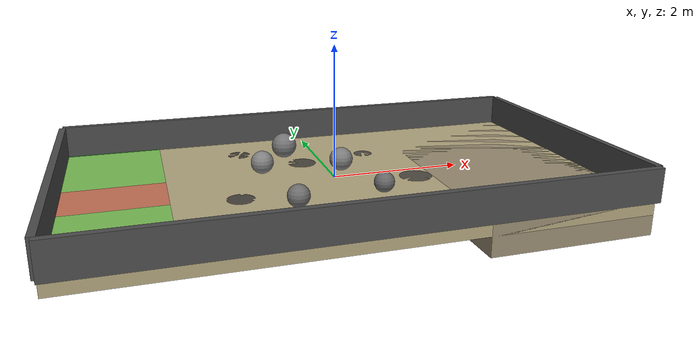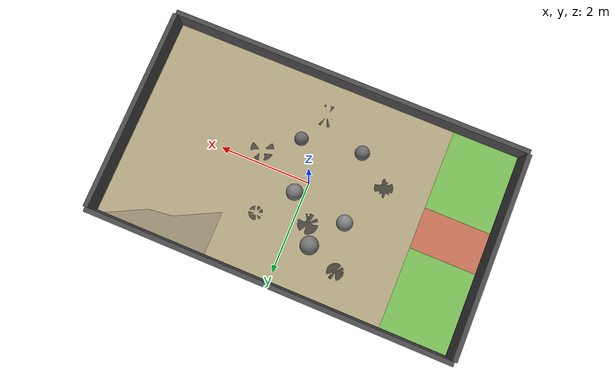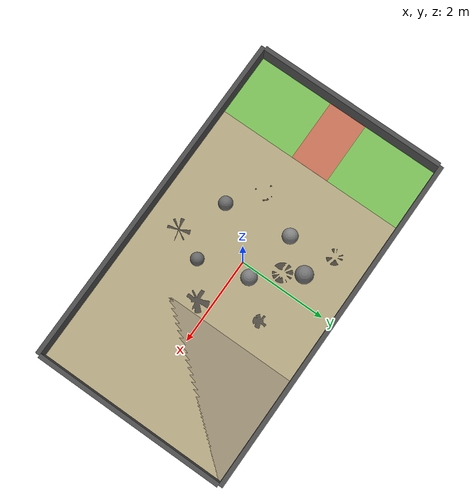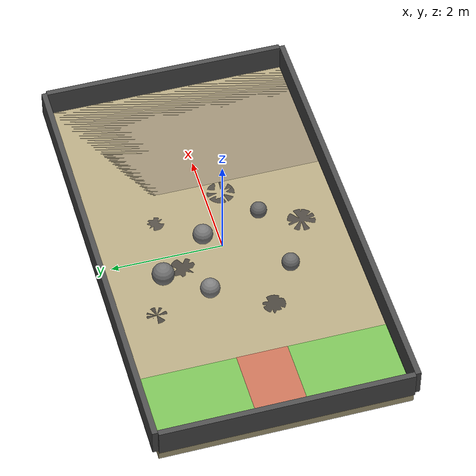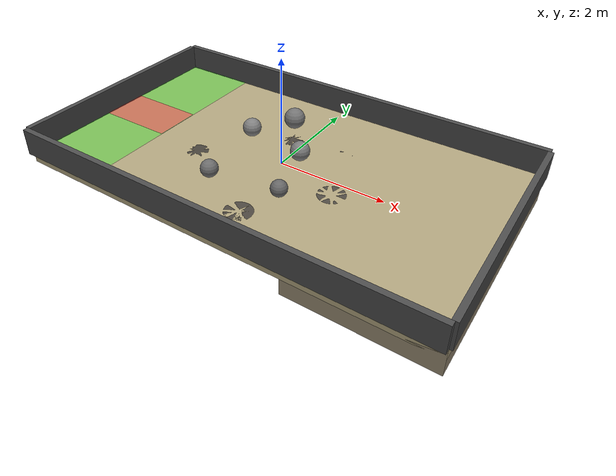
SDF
<?xml version="1.0"?>
<sdf version="1.6">
  <world name="lunabotics_uk_arena">

    <!-- Physics settings for lunar-like simulation -->
    <physics type="ode">
      <max_step_size>0.001</max_step_size>
      <real_time_factor>1</real_time_factor>
      <real_time_update_rate>1000</real_time_update_rate>
      <gravity>0 0 -9.81</gravity> <!-- Earth gravity, change to -1.62 for lunar -->
    </physics>

    <!-- Lighting -->
    <light type="directional" name="sun">
      <cast_shadows>true</cast_shadows>
      <pose>0 0 10 0 0 0</pose>
      <diffuse>0.8 0.8 0.8 1</diffuse>
      <specular>0.2 0.2 0.2 1</specular>
      <attenuation>
        <range>1000</range>
        <constant>0.9</constant>
        <linear>0.01</linear>
        <quadratic>0.001</quadratic>
      </attenuation>
      <direction>-0.5 0.1 -0.9</direction>
    </light>

    <!-- Arena Floor (sand surface) -->
    <model name="arena_floor">
      <static>true</static>
      <link name="floor_link">
        <collision name="floor_collision">
          <geometry>
            <box>
              <size>7.9 4.4 0.215</size> <!-- 21.5cm depth -->
            </box>
          </geometry>
          <surface>
            <friction>
              <ode>
                <mu>0.8</mu>
                <mu2>0.8</mu2>
              </ode>
            </friction>
          </surface>
        </collision>
        <visual name="floor_visual">
          <geometry>
            <box>
              <size>7.9 4.4 0.215</size>
            </box>
          </geometry>
          <material>
            <ambient>0.7 0.65 0.5 1</ambient>
            <diffuse>0.7 0.65 0.5 1</diffuse>
          </material>
        </visual>
        <pose>0 0 -0.1075 0 0 0</pose>
      </link>
    </model>

    <!-- Arena Walls -->
    <!-- North Wall -->
    <model name="wall_north">
      <static>true</static>
      <link name="link">
        <collision name="collision">
          <geometry>
            <box>
              <size>7.9 0.1 0.5</size>
            </box>
          </geometry>
        </collision>
        <visual name="visual">
          <geometry>
            <box>
              <size>7.9 0.1 0.5</size>
            </box>
          </geometry>
          <material>
            <ambient>0.3 0.3 0.3 1</ambient>
            <diffuse>0.3 0.3 0.3 1</diffuse>
          </material>
        </visual>
        <pose>0 2.25 0.25 0 0 0</pose>
      </link>
    </model>

    <!-- South Wall -->
    <model name="wall_south">
      <static>true</static>
      <link name="link">
        <collision name="collision">
          <geometry>
            <box>
              <size>7.9 0.1 0.5</size>
            </box>
          </geometry>
        </collision>
        <visual name="visual">
          <geometry>
            <box>
              <size>7.9 0.1 0.5</size>
            </box>
          </geometry>
          <material>
            <ambient>0.3 0.3 0.3 1</ambient>
            <diffuse>0.3 0.3 0.3 1</diffuse>
          </material>
        </visual>
        <pose>0 -2.25 0.25 0 0 0</pose>
      </link>
    </model>

    <!-- East Wall -->
    <model name="wall_east">
      <static>true</static>
      <link name="link">
        <collision name="collision">
          <geometry>
            <box>
              <size>0.1 4.4 0.5</size>
            </box>
          </geometry>
        </collision>
        <visual name="visual">
          <geometry>
            <box>
              <size>0.1 4.4 0.5</size>
            </box>
          </geometry>
          <material>
            <ambient>0.3 0.3 0.3 1</ambient>
            <diffuse>0.3 0.3 0.3 1</diffuse>
          </material>
        </visual>
        <pose>3.95 0 0.25 0 0 0</pose>
      </link>
    </model>

    <!-- West Wall -->
    <model name="wall_west">
      <static>true</static>
      <link name="link">
        <collision name="collision">
          <geometry>
            <box>
              <size>0.1 4.4 0.5</size>
            </box>
          </geometry>
        </collision>
        <visual name="visual">
          <geometry>
            <box>
              <size>0.1 4.4 0.5</size>
            </box>
          </geometry>
          <material>
            <ambient>0.3 0.3 0.3 1</ambient>
            <diffuse>0.3 0.3 0.3 1</diffuse>
          </material>
        </visual>
        <pose>-3.95 0 0.25 0 0 0</pose>
      </link>
    </model>

    <!-- Excavation Zone (deeper sand area) -->
    <model name="excavation_zone">
      <static>true</static>
      <link name="link">
        <collision name="collision">
          <geometry>
            <box>
              <size>2.5 4.4 0.515</size> <!-- 51.5cm depth -->
            </box>
          </geometry>
          <surface>
            <friction>
              <ode>
                <mu>0.8</mu>
                <mu2>0.8</mu2>
              </ode>
            </friction>
          </surface>
        </collision>
        <visual name="visual">
          <geometry>
            <box>
              <size>2.5 4.4 0.515</size>
            </box>
          </geometry>
          <material>
            <ambient>0.6 0.55 0.45 1</ambient>
            <diffuse>0.6 0.55 0.45 1</diffuse>
          </material>
        </visual>
        <pose>2.7 0 -0.2575 0 0 0</pose>
      </link>
    </model>

    <!-- Boulder Obstacles (example positions - randomize as needed) -->
    <model name="boulder_1">
      <static>true</static>
      <link name="link">
        <collision name="collision">
          <geometry>
            <sphere>
              <radius>0.175</radius> <!-- ~35cm diameter -->
            </sphere>
          </geometry>
        </collision>
        <visual name="visual">
          <geometry>
            <sphere>
              <radius>0.175</radius>
            </sphere>
          </geometry>
          <material>
            <ambient>0.5 0.5 0.5 1</ambient>
            <diffuse>0.5 0.5 0.5 1</diffuse>
          </material>
        </visual>
        <pose>-1.0 0.5 0.175 0 0 0</pose>
      </link>
    </model>

    <model name="boulder_2">
      <static>true</static>
      <link name="link">
        <collision name="collision">
          <geometry>
            <sphere>
              <radius>0.15</radius> <!-- ~30cm diameter -->
            </sphere>
          </geometry>
        </collision>
        <visual name="visual">
          <geometry>
            <sphere>
              <radius>0.15</radius>
            </sphere>
          </geometry>
          <material>
            <ambient>0.4 0.4 0.4 1</ambient>
            <diffuse>0.4 0.4 0.4 1</diffuse>
          </material>
        </visual>
        <pose>0.5 -0.8 0.15 0 0 0</pose>
      </link>
    </model>

    <model name="boulder_3">
      <static>true</static>
      <link name="link">
        <collision name="collision">
          <geometry>
            <sphere>
              <radius>0.20</radius> <!-- ~40cm diameter -->
            </sphere>
          </geometry>
        </collision>
        <visual name="visual">
          <geometry>
            <sphere>
              <radius>0.20</radius>
            </sphere>
          </geometry>
          <material>
            <ambient>0.45 0.45 0.45 1</ambient>
            <diffuse>0.45 0.45 0.45 1</diffuse>
          </material>
        </visual>
        <pose>-0.5 1.2 0.20 0 0 0</pose>
      </link>
    </model>

    <model name="boulder_4">
      <static>true</static>
      <link name="link">
        <collision name="collision">
          <geometry>
            <sphere>
              <radius>0.18</radius> <!-- ~36cm diameter -->
            </sphere>
          </geometry>
        </collision>
        <visual name="visual">
          <geometry>
            <sphere>
              <radius>0.18</radius>
            </sphere>
          </geometry>
          <material>
            <ambient>0.48 0.48 0.48 1</ambient>
            <diffuse>0.48 0.48 0.48 1</diffuse>
          </material>
        </visual>
        <pose>0.2 0.3 0.18 0 0 0</pose>
      </link>
    </model>

    <model name="boulder_5">
      <static>true</static>
      <link name="link">
        <collision name="collision">
          <geometry>
            <sphere>
              <radius>0.16</radius> <!-- ~32cm diameter -->
            </sphere>
          </geometry>
        </collision>
        <visual name="visual">
          <geometry>
            <sphere>
              <radius>0.16</radius>
            </sphere>
          </geometry>
          <material>
            <ambient>0.42 0.42 0.42 1</ambient>
            <diffuse>0.42 0.42 0.42 1</diffuse>
          </material>
        </visual>
        <pose>-0.8 -1.0 0.16 0 0 0</pose>
      </link>
    </model>

    <!-- Crater Obstacles (depressions in the sand) -->
    <!-- Crater 1 - Medium size -->
    <model name="crater_1">
      <static>true</static>
      <link name="link">
        <collision name="collision">
          <geometry>
            <cylinder>
              <radius>0.25</radius> <!-- 50cm diameter -->
              <length>0.20</length> <!-- 20cm depth -->
            </cylinder>
          </geometry>
        </collision>
        <visual name="visual">
          <geometry>
            <cylinder>
              <radius>0.25</radius>
              <length>0.20</length>
            </cylinder>
          </geometry>
          <material>
            <ambient>0.3 0.28 0.25 1</ambient>
            <diffuse>0.3 0.28 0.25 1</diffuse>
          </material>
        </visual>
        <pose>0.2 -1.5 -0.10 0 0 0</pose>
      </link>
    </model>

    <!-- Crater 2 - Large size -->
    <model name="crater_2">
      <static>true</static>
      <link name="link">
        <collision name="collision">
          <geometry>
            <cylinder>
              <radius>0.20</radius> <!-- 40cm diameter -->
              <length>0.25</length> <!-- 25cm depth -->
            </cylinder>
          </geometry>
        </collision>
        <visual name="visual">
          <geometry>
            <cylinder>
              <radius>0.20</radius>
              <length>0.25</length>
            </cylinder>
          </geometry>
          <material>
            <ambient>0.28 0.26 0.23 1</ambient>
            <diffuse>0.28 0.26 0.23 1</diffuse>
          </material>
        </visual>
        <pose>-1.5 -0.5 -0.125 0 0 0</pose>
      </link>
    </model>

    <!-- Crater 3 - Small size -->
    <model name="crater_3">
      <static>true</static>
      <link name="link">
        <collision name="collision">
          <geometry>
            <cylinder>
              <radius>0.15</radius> <!-- 30cm diameter -->
              <length>0.15</length> <!-- 15cm depth -->
            </cylinder>
          </geometry>
        </collision>
        <visual name="visual">
          <geometry>
            <cylinder>
              <radius>0.15</radius>
              <length>0.15</length>
            </cylinder>
          </geometry>
          <material>
            <ambient>0.32 0.30 0.27 1</ambient>
            <diffuse>0.32 0.30 0.27 1</diffuse>
          </material>
        </visual>
        <pose>0.8 1.0 -0.075 0 0 0</pose>
      </link>
    </model>

    <!-- Crater 4 - Medium-Large size -->
    <model name="crater_4">
      <static>true</static>
      <link name="link">
        <collision name="collision">
          <geometry>
            <cylinder>
              <radius>0.22</radius> <!-- 44cm diameter -->
              <length>0.22</length> <!-- 22cm depth -->
            </cylinder>
          </geometry>
        </collision>
        <visual name="visual">
          <geometry>
            <cylinder>
              <radius>0.22</radius>
              <length>0.22</length>
            </cylinder>
          </geometry>
          <material>
            <ambient>0.29 0.27 0.24 1</ambient>
            <diffuse>0.29 0.27 0.24 1</diffuse>
          </material>
        </visual>
        <pose>-0.3 0.8 -0.11 0 0 0</pose>
      </link>
    </model>

    <!-- Crater 5 - Wide and shallow -->
    <model name="crater_5">
      <static>true</static>
      <link name="link">
        <collision name="collision">
          <geometry>
            <cylinder>
              <radius>0.25</radius> <!-- 50cm diameter -->
              <length>0.18</length> <!-- 18cm depth -->
            </cylinder>
          </geometry>
        </collision>
        <visual name="visual">
          <geometry>
            <cylinder>
              <radius>0.25</radius>
              <length>0.18</length>
            </cylinder>
          </geometry>
          <material>
            <ambient>0.31 0.29 0.26 1</ambient>
            <diffuse>0.31 0.29 0.26 1</diffuse>
          </material>
        </visual>
        <pose>1.2 -0.3 -0.09 0 0 0</pose>
      </link>
    </model>

    <!-- Crater 6 - Deep and narrow -->
    <model name="crater_6">
      <static>true</static>
      <link name="link">
        <collision name="collision">
          <geometry>
            <cylinder>
              <radius>0.18</radius> <!-- 36cm diameter -->
              <length>0.30</length> <!-- 30cm depth -->
            </cylinder>
          </geometry>
        </collision>
        <visual name="visual">
          <geometry>
            <cylinder>
              <radius>0.18</radius>
              <length>0.30</length>
            </cylinder>
          </geometry>
          <material>
            <ambient>0.27 0.25 0.22 1</ambient>
            <diffuse>0.27 0.25 0.22 1</diffuse>
          </material>
        </visual>
        <pose>-1.2 1.5 -0.15 0 0 0</pose>
      </link>
    </model>

    <!-- Zone Markers (visual only) -->
    <!-- Starting Zone -->
    <model name="starting_zone_marker">
      <static>true</static>
      <link name="link">
        <visual name="visual">
          <geometry>
            <box>
              <size>1.5 4.4 0.01</size>
            </box>
          </geometry>
          <material>
            <ambient>0 1 0 0.3</ambient>
            <diffuse>0 1 0 0.3</diffuse>
          </material>
        </visual>
        <pose>-3.2 0 0.005 0 0 0</pose>
      </link>
    </model>

    <!-- Construction Zone Target Area -->
    <model name="construction_target_marker">
      <static>true</static>
      <link name="link">
        <visual name="visual">
          <geometry>
            <box>
              <size>1.5 0.9 0.01</size>
            </box>
          </geometry>
          <material>
            <ambient>1 0 0 0.3</ambient>
            <diffuse>1 0 0 0.3</diffuse>
          </material>
        </visual>
        <pose>-3.2 0 0.01 0 0 0</pose>
      </link>
    </model>

    <!-- Camera view (optional - for visualization) -->
    <gui fullscreen='0'>
      <camera name='user_camera'>
        <pose>-5 -5 5 0 0.5 0.8</pose>
        <view_controller>orbit</view_controller>
      </camera>
    </gui>

  </world>
</sdf>
